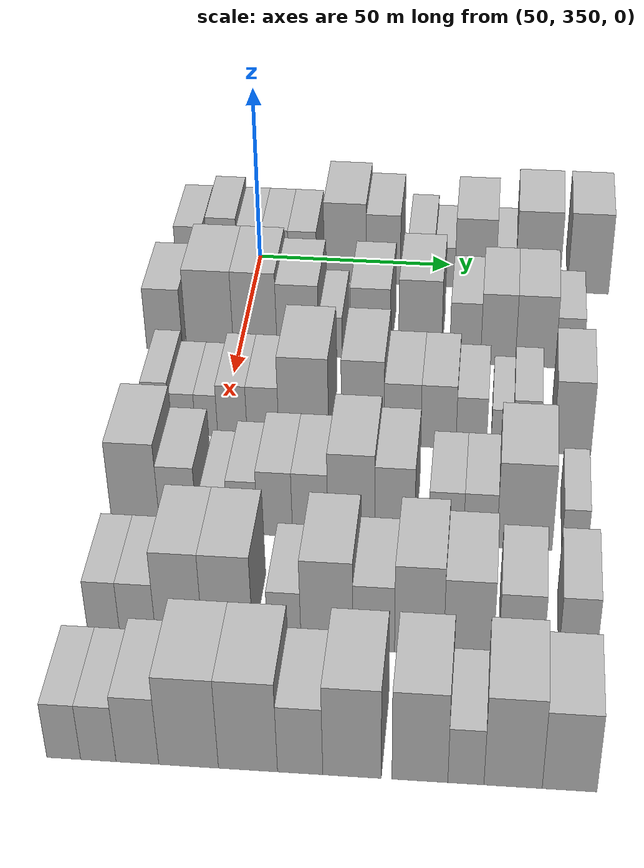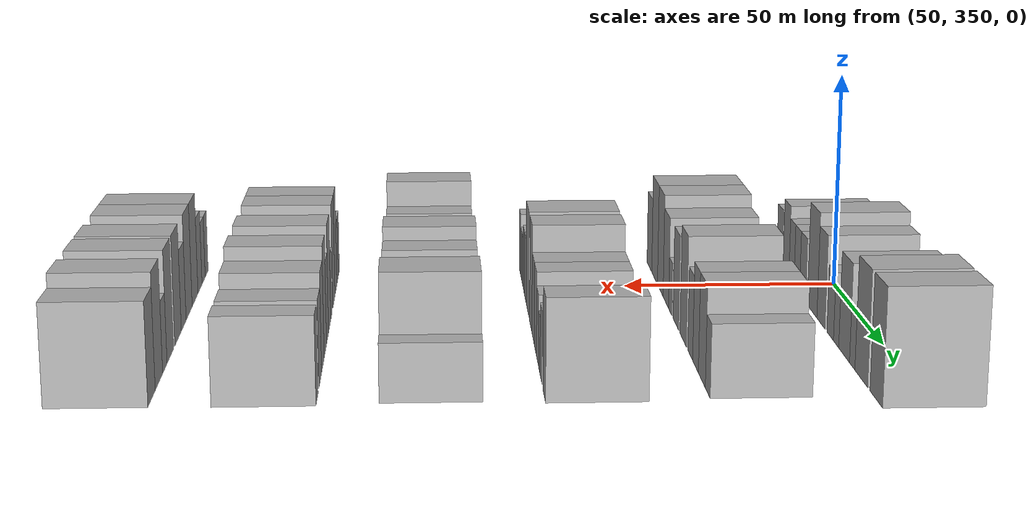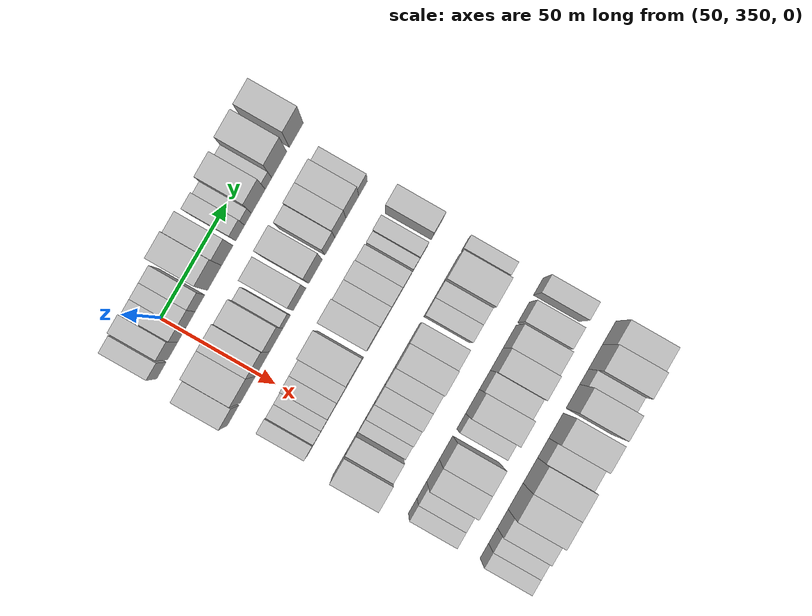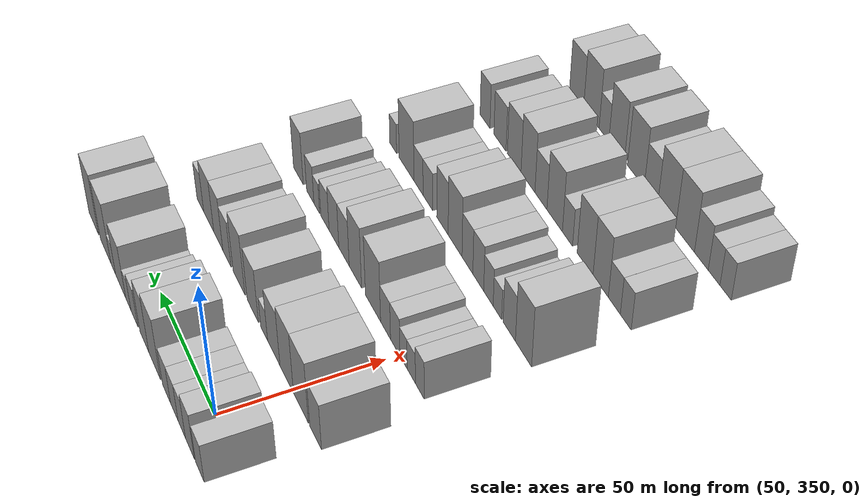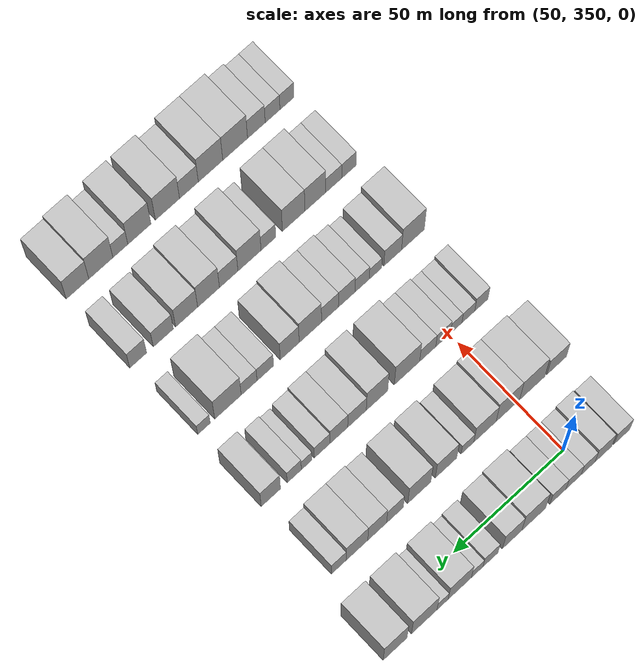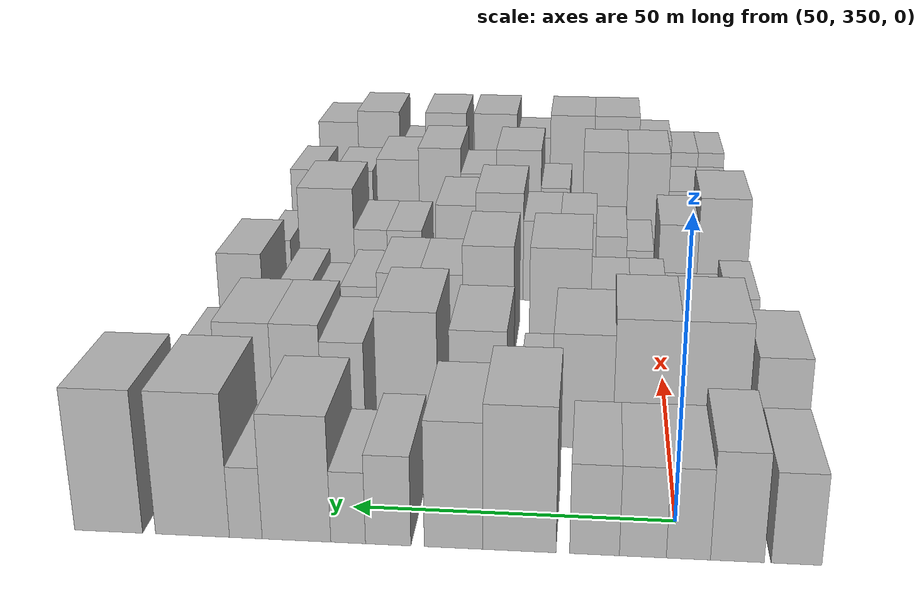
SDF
<sdf version="1.6">
 <world name="default">
  <model name="building_94">
   <static>1</static>
   <pose>50.0000 333.0118 0 0.000000 0.000000 0.000000</pose>
   <link name="link">
    <pose>0 0 7.50 0 0 0</pose>
    <collision name="collision"><geometry><box><size>20.0000 7.2620 15.0000</size></box></geometry></collision>
    <visual name="visual">
     <cast_shadows>0</cast_shadows>
     <geometry><box><size>20.0000 7.2620 15.0000</size></box></geometry>
     <material>
      <script>
       <uri>model://HANNAS_wall/materials/scripts</uri>
       <uri>model://HANNAS_wall/materials/textures</uri>
       <name>vrc/HANNAS_wall</name>
      </script>
     </material>
    </visual>
   </link>
  </model>
  <model name="building_95">
   <static>1</static>
   <pose>50.0000 341.5296 0 0.000000 0.000000 0.000000</pose>
   <link name="link">
    <pose>0 0 9.00 0 0 0</pose>
    <collision name="collision"><geometry><box><size>20.0000 7.7735 18.0000</size></box></geometry></collision>
    <visual name="visual">
     <cast_shadows>0</cast_shadows>
     <geometry><box><size>20.0000 7.7735 18.0000</size></box></geometry>
     <material>
      <script>
       <uri>model://HANNAS_wall/materials/scripts</uri>
       <uri>model://HANNAS_wall/materials/textures</uri>
       <name>vrc/HANNAS_wall</name>
      </script>
     </material>
    </visual>
   </link>
  </model>
  <model name="building_96">
   <static>1</static>
   <pose>50.0000 348.6189 0 0.000000 0.000000 0.000000</pose>
   <link name="link">
    <pose>0 0 7.50 0 0 0</pose>
    <collision name="collision"><geometry><box><size>20.0000 6.4051 15.0000</size></box></geometry></collision>
    <visual name="visual">
     <cast_shadows>0</cast_shadows>
     <geometry><box><size>20.0000 6.4051 15.0000</size></box></geometry>
     <material>
      <script>
       <uri>model://HANNAS_wall/materials/scripts</uri>
       <uri>model://HANNAS_wall/materials/textures</uri>
       <name>vrc/HANNAS_wall</name>
      </script>
     </material>
    </visual>
   </link>
  </model>
  <model name="building_97">
   <static>1</static>
   <pose>50.0000 355.2483 0 0.000000 0.000000 0.000000</pose>
   <link name="link">
    <pose>0 0 7.50 0 0 0</pose>
    <collision name="collision"><geometry><box><size>20.0000 6.8537 15.0000</size></box></geometry></collision>
    <visual name="visual">
     <cast_shadows>0</cast_shadows>
     <geometry><box><size>20.0000 6.8537 15.0000</size></box></geometry>
     <material>
      <script>
       <uri>model://HANNAS_wall/materials/scripts</uri>
       <uri>model://HANNAS_wall/materials/textures</uri>
       <name>vrc/HANNAS_wall</name>
      </script>
     </material>
    </visual>
   </link>
  </model>
  <model name="building_98">
   <static>1</static>
   <pose>50.0000 362.3265 0 0.000000 0.000000 0.000000</pose>
   <link name="link">
    <pose>0 0 7.50 0 0 0</pose>
    <collision name="collision"><geometry><box><size>20.0000 7.3027 15.0000</size></box></geometry></collision>
    <visual name="visual">
     <cast_shadows>0</cast_shadows>
     <geometry><box><size>20.0000 7.3027 15.0000</size></box></geometry>
     <material>
      <script>
       <uri>model://HANNAS_wall/materials/scripts</uri>
       <uri>model://HANNAS_wall/materials/textures</uri>
       <name>vrc/HANNAS_wall</name>
      </script>
     </material>
    </visual>
   </link>
  </model>
  <model name="building_99">
   <static>1</static>
   <pose>50.0000 373.4013 0 0.000000 0.000000 0.000000</pose>
   <link name="link">
    <pose>0 0 12.00 0 0 0</pose>
    <collision name="collision"><geometry><box><size>20.0000 10.8469 24.0000</size></box></geometry></collision>
    <visual name="visual">
     <cast_shadows>0</cast_shadows>
     <geometry><box><size>20.0000 10.8469 24.0000</size></box></geometry>
     <material>
      <script>
       <uri>model://HANNAS_wall/materials/scripts</uri>
       <uri>model://HANNAS_wall/materials/textures</uri>
       <name>vrc/HANNAS_wall</name>
      </script>
     </material>
    </visual>
   </link>
  </model>
  <model name="building_100">
   <static>1</static>
   <pose>50.0000 383.1875 0 0.000000 0.000000 0.000000</pose>
   <link name="link">
    <pose>0 0 10.50 0 0 0</pose>
    <collision name="collision"><geometry><box><size>20.0000 8.7256 21.0000</size></box></geometry></collision>
    <visual name="visual">
     <cast_shadows>0</cast_shadows>
     <geometry><box><size>20.0000 8.7256 21.0000</size></box></geometry>
     <material>
      <script>
       <uri>model://HANNAS_wall/materials/scripts</uri>
       <uri>model://HANNAS_wall/materials/textures</uri>
       <name>vrc/HANNAS_wall</name>
      </script>
     </material>
    </visual>
   </link>
  </model>
  <model name="building_101">
   <static>1</static>
   <pose>50.0000 392.9648 0 0.000000 0.000000 0.000000</pose>
   <link name="link">
    <pose>0 0 7.50 0 0 0</pose>
    <collision name="collision"><geometry><box><size>20.0000 6.8289 15.0000</size></box></geometry></collision>
    <visual name="visual">
     <cast_shadows>0</cast_shadows>
     <geometry><box><size>20.0000 6.8289 15.0000</size></box></geometry>
     <material>
      <script>
       <uri>model://HANNAS_wall/materials/scripts</uri>
       <uri>model://HANNAS_wall/materials/textures</uri>
       <name>vrc/HANNAS_wall</name>
      </script>
     </material>
    </visual>
   </link>
  </model>
  <model name="building_102">
   <static>1</static>
   <pose>50.0000 398.9967 0 0.000000 0.000000 0.000000</pose>
   <link name="link">
    <pose>0 0 6.00 0 0 0</pose>
    <collision name="collision"><geometry><box><size>20.0000 5.2349 12.0000</size></box></geometry></collision>
    <visual name="visual">
     <cast_shadows>0</cast_shadows>
     <geometry><box><size>20.0000 5.2349 12.0000</size></box></geometry>
     <material>
      <script>
       <uri>model://HANNAS_wall/materials/scripts</uri>
       <uri>model://HANNAS_wall/materials/textures</uri>
       <name>vrc/HANNAS_wall</name>
      </script>
     </material>
    </visual>
   </link>
  </model>
  <model name="building_103">
   <static>1</static>
   <pose>50.0000 406.8303 0 0.000000 0.000000 0.000000</pose>
   <link name="link">
    <pose>0 0 10.50 0 0 0</pose>
    <collision name="collision"><geometry><box><size>20.0000 10.4324 21.0000</size></box></geometry></collision>
    <visual name="visual">
     <cast_shadows>0</cast_shadows>
     <geometry><box><size>20.0000 10.4324 21.0000</size></box></geometry>
     <material>
      <script>
       <uri>model://HANNAS_wall/materials/scripts</uri>
       <uri>model://HANNAS_wall/materials/textures</uri>
       <name>vrc/HANNAS_wall</name>
      </script>
     </material>
    </visual>
   </link>
  </model>
  <model name="building_104">
   <static>1</static>
   <pose>50.0000 414.5494 0 0.000000 0.000000 0.000000</pose>
   <link name="link">
    <pose>0 0 6.00 0 0 0</pose>
    <collision name="collision"><geometry><box><size>20.0000 5.0058 12.0000</size></box></geometry></collision>
    <visual name="visual">
     <cast_shadows>0</cast_shadows>
     <geometry><box><size>20.0000 5.0058 12.0000</size></box></geometry>
     <material>
      <script>
       <uri>model://HANNAS_wall/materials/scripts</uri>
       <uri>model://HANNAS_wall/materials/textures</uri>
       <name>vrc/HANNAS_wall</name>
      </script>
     </material>
    </visual>
   </link>
  </model>
  <model name="building_105">
   <static>1</static>
   <pose>50.0000 422.7407 0 0.000000 0.000000 0.000000</pose>
   <link name="link">
    <pose>0 0 12.00 0 0 0</pose>
    <collision name="collision"><geometry><box><size>20.0000 11.3767 24.0000</size></box></geometry></collision>
    <visual name="visual">
     <cast_shadows>0</cast_shadows>
     <geometry><box><size>20.0000 11.3767 24.0000</size></box></geometry>
     <material>
      <script>
       <uri>model://HANNAS_wall/materials/scripts</uri>
       <uri>model://HANNAS_wall/materials/textures</uri>
       <name>vrc/HANNAS_wall</name>
      </script>
     </material>
    </visual>
   </link>
  </model>
  <model name="building_106">
   <static>1</static>
   <pose>50.0000 435.7053 0 0.000000 0.000000 0.000000</pose>
   <link name="link">
    <pose>0 0 12.00 0 0 0</pose>
    <collision name="collision"><geometry><box><size>20.0000 10.5524 24.0000</size></box></geometry></collision>
    <visual name="visual">
     <cast_shadows>0</cast_shadows>
     <geometry><box><size>20.0000 10.5524 24.0000</size></box></geometry>
     <material>
      <script>
       <uri>model://HANNAS_wall/materials/scripts</uri>
       <uri>model://HANNAS_wall/materials/textures</uri>
       <name>vrc/HANNAS_wall</name>
      </script>
     </material>
    </visual>
   </link>
  </model>
  <model name="building_215">
   <static>1</static>
   <pose>82.0000 331.7065 0 0.000000 0.000000 0.000000</pose>
   <link name="link">
    <pose>0 0 9.00 0 0 0</pose>
    <collision name="collision"><geometry><box><size>20.0000 8.9043 18.0000</size></box></geometry></collision>
    <visual name="visual">
     <cast_shadows>0</cast_shadows>
     <geometry><box><size>20.0000 8.9043 18.0000</size></box></geometry>
     <material>
      <script>
       <uri>model://HANNAS_wall/materials/scripts</uri>
       <uri>model://HANNAS_wall/materials/textures</uri>
       <name>vrc/HANNAS_wall</name>
      </script>
     </material>
    </visual>
   </link>
  </model>
  <model name="building_216">
   <static>1</static>
   <pose>82.0000 342.9677 0 0.000000 0.000000 0.000000</pose>
   <link name="link">
    <pose>0 0 12.00 0 0 0</pose>
    <collision name="collision"><geometry><box><size>20.0000 11.6180 24.0000</size></box></geometry></collision>
    <visual name="visual">
     <cast_shadows>0</cast_shadows>
     <geometry><box><size>20.0000 11.6180 24.0000</size></box></geometry>
     <material>
      <script>
       <uri>model://HANNAS_wall/materials/scripts</uri>
       <uri>model://HANNAS_wall/materials/textures</uri>
       <name>vrc/HANNAS_wall</name>
      </script>
     </material>
    </visual>
   </link>
  </model>
  <model name="building_217">
   <static>1</static>
   <pose>82.0000 354.1685 0 0.000000 0.000000 0.000000</pose>
   <link name="link">
    <pose>0 0 12.00 0 0 0</pose>
    <collision name="collision"><geometry><box><size>20.0000 10.7837 24.0000</size></box></geometry></collision>
    <visual name="visual">
     <cast_shadows>0</cast_shadows>
     <geometry><box><size>20.0000 10.7837 24.0000</size></box></geometry>
     <material>
      <script>
       <uri>model://HANNAS_wall/materials/scripts</uri>
       <uri>model://HANNAS_wall/materials/textures</uri>
       <name>vrc/HANNAS_wall</name>
      </script>
     </material>
    </visual>
   </link>
  </model>
  <model name="building_218">
   <static>1</static>
   <pose>82.0000 364.6769 0 0.000000 0.000000 0.000000</pose>
   <link name="link">
    <pose>0 0 10.50 0 0 0</pose>
    <collision name="collision"><geometry><box><size>20.0000 10.2331 21.0000</size></box></geometry></collision>
    <visual name="visual">
     <cast_shadows>0</cast_shadows>
     <geometry><box><size>20.0000 10.2331 21.0000</size></box></geometry>
     <material>
      <script>
       <uri>model://HANNAS_wall/materials/scripts</uri>
       <uri>model://HANNAS_wall/materials/textures</uri>
       <name>vrc/HANNAS_wall</name>
      </script>
     </material>
    </visual>
   </link>
  </model>
  <model name="building_219">
   <static>1</static>
   <pose>82.0000 372.6574 0 0.000000 0.000000 0.000000</pose>
   <link name="link">
    <pose>0 0 6.00 0 0 0</pose>
    <collision name="collision"><geometry><box><size>20.0000 5.7279 12.0000</size></box></geometry></collision>
    <visual name="visual">
     <cast_shadows>0</cast_shadows>
     <geometry><box><size>20.0000 5.7279 12.0000</size></box></geometry>
     <material>
      <script>
       <uri>model://HANNAS_wall/materials/scripts</uri>
       <uri>model://HANNAS_wall/materials/textures</uri>
       <name>vrc/HANNAS_wall</name>
      </script>
     </material>
    </visual>
   </link>
  </model>
  <model name="building_220">
   <static>1</static>
   <pose>82.0000 382.3912 0 0.000000 0.000000 0.000000</pose>
   <link name="link">
    <pose>0 0 10.50 0 0 0</pose>
    <collision name="collision"><geometry><box><size>20.0000 9.7396 21.0000</size></box></geometry></collision>
    <visual name="visual">
     <cast_shadows>0</cast_shadows>
     <geometry><box><size>20.0000 9.7396 21.0000</size></box></geometry>
     <material>
      <script>
       <uri>model://HANNAS_wall/materials/scripts</uri>
       <uri>model://HANNAS_wall/materials/textures</uri>
       <name>vrc/HANNAS_wall</name>
      </script>
     </material>
    </visual>
   </link>
  </model>
  <model name="building_221">
   <static>1</static>
   <pose>82.0000 394.4813 0 0.000000 0.000000 0.000000</pose>
   <link name="link">
    <pose>0 0 12.00 0 0 0</pose>
    <collision name="collision"><geometry><box><size>20.0000 10.4406 24.0000</size></box></geometry></collision>
    <visual name="visual">
     <cast_shadows>0</cast_shadows>
     <geometry><box><size>20.0000 10.4406 24.0000</size></box></geometry>
     <material>
      <script>
       <uri>model://HANNAS_wall/materials/scripts</uri>
       <uri>model://HANNAS_wall/materials/textures</uri>
       <name>vrc/HANNAS_wall</name>
      </script>
     </material>
    </visual>
   </link>
  </model>
  <model name="building_222">
   <static>1</static>
   <pose>82.0000 405.4523 0 0.000000 0.000000 0.000000</pose>
   <link name="link">
    <pose>0 0 9.00 0 0 0</pose>
    <collision name="collision"><geometry><box><size>20.0000 7.5016 18.0000</size></box></geometry></collision>
    <visual name="visual">
     <cast_shadows>0</cast_shadows>
     <geometry><box><size>20.0000 7.5016 18.0000</size></box></geometry>
     <material>
      <script>
       <uri>model://HANNAS_wall/materials/scripts</uri>
       <uri>model://HANNAS_wall/materials/textures</uri>
       <name>vrc/HANNAS_wall</name>
      </script>
     </material>
    </visual>
   </link>
  </model>
  <model name="building_223">
   <static>1</static>
   <pose>82.0000 413.4167 0 0.000000 0.000000 0.000000</pose>
   <link name="link">
    <pose>0 0 10.50 0 0 0</pose>
    <collision name="collision"><geometry><box><size>20.0000 8.4271 21.0000</size></box></geometry></collision>
    <visual name="visual">
     <cast_shadows>0</cast_shadows>
     <geometry><box><size>20.0000 8.4271 21.0000</size></box></geometry>
     <material>
      <script>
       <uri>model://HANNAS_wall/materials/scripts</uri>
       <uri>model://HANNAS_wall/materials/textures</uri>
       <name>vrc/HANNAS_wall</name>
      </script>
     </material>
    </visual>
   </link>
  </model>
  <model name="building_224">
   <static>1</static>
   <pose>82.0000 422.4875 0 0.000000 0.000000 0.000000</pose>
   <link name="link">
    <pose>0 0 10.50 0 0 0</pose>
    <collision name="collision"><geometry><box><size>20.0000 9.7145 21.0000</size></box></geometry></collision>
    <visual name="visual">
     <cast_shadows>0</cast_shadows>
     <geometry><box><size>20.0000 9.7145 21.0000</size></box></geometry>
     <material>
      <script>
       <uri>model://HANNAS_wall/materials/scripts</uri>
       <uri>model://HANNAS_wall/materials/textures</uri>
       <name>vrc/HANNAS_wall</name>
      </script>
     </material>
    </visual>
   </link>
  </model>
  <model name="building_225">
   <static>1</static>
   <pose>82.0000 430.6264 0 0.000000 0.000000 0.000000</pose>
   <link name="link">
    <pose>0 0 7.50 0 0 0</pose>
    <collision name="collision"><geometry><box><size>20.0000 6.5633 15.0000</size></box></geometry></collision>
    <visual name="visual">
     <cast_shadows>0</cast_shadows>
     <geometry><box><size>20.0000 6.5633 15.0000</size></box></geometry>
     <material>
      <script>
       <uri>model://HANNAS_wall/materials/scripts</uri>
       <uri>model://HANNAS_wall/materials/textures</uri>
       <name>vrc/HANNAS_wall</name>
      </script>
     </material>
    </visual>
   </link>
  </model>
  <model name="building_330">
   <static>1</static>
   <pose>114.0000 335.5327 0 0.000000 0.000000 0.000000</pose>
   <link name="link">
    <pose>0 0 7.50 0 0 0</pose>
    <collision name="collision"><geometry><box><size>20.0000 6.1132 15.0000</size></box></geometry></collision>
    <visual name="visual">
     <cast_shadows>0</cast_shadows>
     <geometry><box><size>20.0000 6.1132 15.0000</size></box></geometry>
     <material>
      <script>
       <uri>model://HANNAS_wall/materials/scripts</uri>
       <uri>model://HANNAS_wall/materials/textures</uri>
       <name>vrc/HANNAS_wall</name>
      </script>
     </material>
    </visual>
   </link>
  </model>
  <model name="building_331">
   <static>1</static>
   <pose>114.0000 341.5379 0 0.000000 0.000000 0.000000</pose>
   <link name="link">
    <pose>0 0 6.00 0 0 0</pose>
    <collision name="collision"><geometry><box><size>20.0000 5.8972 12.0000</size></box></geometry></collision>
    <visual name="visual">
     <cast_shadows>0</cast_shadows>
     <geometry><box><size>20.0000 5.8972 12.0000</size></box></geometry>
     <material>
      <script>
       <uri>model://HANNAS_wall/materials/scripts</uri>
       <uri>model://HANNAS_wall/materials/textures</uri>
       <name>vrc/HANNAS_wall</name>
      </script>
     </material>
    </visual>
   </link>
  </model>
  <model name="building_332">
   <static>1</static>
   <pose>114.0000 347.0596 0 0.000000 0.000000 0.000000</pose>
   <link name="link">
    <pose>0 0 6.00 0 0 0</pose>
    <collision name="collision"><geometry><box><size>20.0000 5.1463 12.0000</size></box></geometry></collision>
    <visual name="visual">
     <cast_shadows>0</cast_shadows>
     <geometry><box><size>20.0000 5.1463 12.0000</size></box></geometry>
     <material>
      <script>
       <uri>model://HANNAS_wall/materials/scripts</uri>
       <uri>model://HANNAS_wall/materials/textures</uri>
       <name>vrc/HANNAS_wall</name>
      </script>
     </material>
    </visual>
   </link>
  </model>
  <model name="building_333">
   <static>1</static>
   <pose>114.0000 353.0600 0 0.000000 0.000000 0.000000</pose>
   <link name="link">
    <pose>0 0 7.50 0 0 0</pose>
    <collision name="collision"><geometry><box><size>20.0000 6.8545 15.0000</size></box></geometry></collision>
    <visual name="visual">
     <cast_shadows>0</cast_shadows>
     <geometry><box><size>20.0000 6.8545 15.0000</size></box></geometry>
     <material>
      <script>
       <uri>model://HANNAS_wall/materials/scripts</uri>
       <uri>model://HANNAS_wall/materials/textures</uri>
       <name>vrc/HANNAS_wall</name>
      </script>
     </material>
    </visual>
   </link>
  </model>
  <model name="building_334">
   <static>1</static>
   <pose>114.0000 360.1743 0 0.000000 0.000000 0.000000</pose>
   <link name="link">
    <pose>0 0 7.50 0 0 0</pose>
    <collision name="collision"><geometry><box><size>20.0000 7.3742 15.0000</size></box></geometry></collision>
    <visual name="visual">
     <cast_shadows>0</cast_shadows>
     <geometry><box><size>20.0000 7.3742 15.0000</size></box></geometry>
     <material>
      <script>
       <uri>model://HANNAS_wall/materials/scripts</uri>
       <uri>model://HANNAS_wall/materials/textures</uri>
       <name>vrc/HANNAS_wall</name>
      </script>
     </material>
    </visual>
   </link>
  </model>
  <model name="building_335">
   <static>1</static>
   <pose>114.0000 369.6341 0 0.000000 0.000000 0.000000</pose>
   <link name="link">
    <pose>0 0 12.00 0 0 0</pose>
    <collision name="collision"><geometry><box><size>20.0000 11.5454 24.0000</size></box></geometry></collision>
    <visual name="visual">
     <cast_shadows>0</cast_shadows>
     <geometry><box><size>20.0000 11.5454 24.0000</size></box></geometry>
     <material>
      <script>
       <uri>model://HANNAS_wall/materials/scripts</uri>
       <uri>model://HANNAS_wall/materials/textures</uri>
       <name>vrc/HANNAS_wall</name>
      </script>
     </material>
    </visual>
   </link>
  </model>
  <model name="building_336">
   <static>1</static>
   <pose>114.0000 383.2844 0 0.000000 0.000000 0.000000</pose>
   <link name="link">
    <pose>0 0 12.00 0 0 0</pose>
    <collision name="collision"><geometry><box><size>20.0000 9.7552 24.0000</size></box></geometry></collision>
    <visual name="visual">
     <cast_shadows>0</cast_shadows>
     <geometry><box><size>20.0000 9.7552 24.0000</size></box></geometry>
     <material>
      <script>
       <uri>model://HANNAS_wall/materials/scripts</uri>
       <uri>model://HANNAS_wall/materials/textures</uri>
       <name>vrc/HANNAS_wall</name>
      </script>
     </material>
    </visual>
   </link>
  </model>
  <model name="building_337">
   <static>1</static>
   <pose>114.0000 392.3564 0 0.000000 0.000000 0.000000</pose>
   <link name="link">
    <pose>0 0 9.00 0 0 0</pose>
    <collision name="collision"><geometry><box><size>20.0000 8.3886 18.0000</size></box></geometry></collision>
    <visual name="visual">
     <cast_shadows>0</cast_shadows>
     <geometry><box><size>20.0000 8.3886 18.0000</size></box></geometry>
     <material>
      <script>
       <uri>model://HANNAS_wall/materials/scripts</uri>
       <uri>model://HANNAS_wall/materials/textures</uri>
       <name>vrc/HANNAS_wall</name>
      </script>
     </material>
    </visual>
   </link>
  </model>
  <model name="building_338">
   <static>1</static>
   <pose>114.0000 400.5766 0 0.000000 0.000000 0.000000</pose>
   <link name="link">
    <pose>0 0 9.00 0 0 0</pose>
    <collision name="collision"><geometry><box><size>20.0000 8.0518 18.0000</size></box></geometry></collision>
    <visual name="visual">
     <cast_shadows>0</cast_shadows>
     <geometry><box><size>20.0000 8.0518 18.0000</size></box></geometry>
     <material>
      <script>
       <uri>model://HANNAS_wall/materials/scripts</uri>
       <uri>model://HANNAS_wall/materials/textures</uri>
       <name>vrc/HANNAS_wall</name>
      </script>
     </material>
    </visual>
   </link>
  </model>
  <model name="building_339">
   <static>1</static>
   <pose>114.0000 408.0944 0 0.000000 0.000000 0.000000</pose>
   <link name="link">
    <pose>0 0 7.50 0 0 0</pose>
    <collision name="collision"><geometry><box><size>20.0000 6.9838 15.0000</size></box></geometry></collision>
    <visual name="visual">
     <cast_shadows>0</cast_shadows>
     <geometry><box><size>20.0000 6.9838 15.0000</size></box></geometry>
     <material>
      <script>
       <uri>model://HANNAS_wall/materials/scripts</uri>
       <uri>model://HANNAS_wall/materials/textures</uri>
       <name>vrc/HANNAS_wall</name>
      </script>
     </material>
    </visual>
   </link>
  </model>
  <model name="building_340">
   <static>1</static>
   <pose>114.0000 415.0109 0 0.000000 0.000000 0.000000</pose>
   <link name="link">
    <pose>0 0 6.00 0 0 0</pose>
    <collision name="collision"><geometry><box><size>20.0000 4.8493 12.0000</size></box></geometry></collision>
    <visual name="visual">
     <cast_shadows>0</cast_shadows>
     <geometry><box><size>20.0000 4.8493 12.0000</size></box></geometry>
     <material>
      <script>
       <uri>model://HANNAS_wall/materials/scripts</uri>
       <uri>model://HANNAS_wall/materials/textures</uri>
       <name>vrc/HANNAS_wall</name>
      </script>
     </material>
    </visual>
   </link>
  </model>
  <model name="building_341">
   <static>1</static>
   <pose>114.0000 420.5894 0 0.000000 0.000000 0.000000</pose>
   <link name="link">
    <pose>0 0 7.50 0 0 0</pose>
    <collision name="collision"><geometry><box><size>20.0000 6.3077 15.0000</size></box></geometry></collision>
    <visual name="visual">
     <cast_shadows>0</cast_shadows>
     <geometry><box><size>20.0000 6.3077 15.0000</size></box></geometry>
     <material>
      <script>
       <uri>model://HANNAS_wall/materials/scripts</uri>
       <uri>model://HANNAS_wall/materials/textures</uri>
       <name>vrc/HANNAS_wall</name>
      </script>
     </material>
    </visual>
   </link>
  </model>
  <model name="building_342">
   <static>1</static>
   <pose>114.0000 431.0531 0 0.000000 0.000000 0.000000</pose>
   <link name="link">
    <pose>0 0 10.50 0 0 0</pose>
    <collision name="collision"><geometry><box><size>20.0000 8.6198 21.0000</size></box></geometry></collision>
    <visual name="visual">
     <cast_shadows>0</cast_shadows>
     <geometry><box><size>20.0000 8.6198 21.0000</size></box></geometry>
     <material>
      <script>
       <uri>model://HANNAS_wall/materials/scripts</uri>
       <uri>model://HANNAS_wall/materials/textures</uri>
       <name>vrc/HANNAS_wall</name>
      </script>
     </material>
    </visual>
   </link>
  </model>
  <model name="building_450">
   <static>1</static>
   <pose>146.0000 336.5098 0 0.000000 0.000000 0.000000</pose>
   <link name="link">
    <pose>0 0 12.00 0 0 0</pose>
    <collision name="collision"><geometry><box><size>20.0000 10.4831 24.0000</size></box></geometry></collision>
    <visual name="visual">
     <cast_shadows>0</cast_shadows>
     <geometry><box><size>20.0000 10.4831 24.0000</size></box></geometry>
     <material>
      <script>
       <uri>model://HANNAS_wall/materials/scripts</uri>
       <uri>model://HANNAS_wall/materials/textures</uri>
       <name>vrc/HANNAS_wall</name>
      </script>
     </material>
    </visual>
   </link>
  </model>
  <model name="building_451">
   <static>1</static>
   <pose>146.0000 345.8288 0 0.000000 0.000000 0.000000</pose>
   <link name="link">
    <pose>0 0 9.00 0 0 0</pose>
    <collision name="collision"><geometry><box><size>20.0000 8.1549 18.0000</size></box></geometry></collision>
    <visual name="visual">
     <cast_shadows>0</cast_shadows>
     <geometry><box><size>20.0000 8.1549 18.0000</size></box></geometry>
     <material>
      <script>
       <uri>model://HANNAS_wall/materials/scripts</uri>
       <uri>model://HANNAS_wall/materials/textures</uri>
       <name>vrc/HANNAS_wall</name>
      </script>
     </material>
    </visual>
   </link>
  </model>
  <model name="building_452">
   <static>1</static>
   <pose>146.0000 353.7565 0 0.000000 0.000000 0.000000</pose>
   <link name="link">
    <pose>0 0 6.00 0 0 0</pose>
    <collision name="collision"><geometry><box><size>20.0000 5.7004 12.0000</size></box></geometry></collision>
    <visual name="visual">
     <cast_shadows>0</cast_shadows>
     <geometry><box><size>20.0000 5.7004 12.0000</size></box></geometry>
     <material>
      <script>
       <uri>model://HANNAS_wall/materials/scripts</uri>
       <uri>model://HANNAS_wall/materials/textures</uri>
       <name>vrc/HANNAS_wall</name>
      </script>
     </material>
    </visual>
   </link>
  </model>
  <model name="building_453">
   <static>1</static>
   <pose>146.0000 359.8624 0 0.000000 0.000000 0.000000</pose>
   <link name="link">
    <pose>0 0 7.50 0 0 0</pose>
    <collision name="collision"><geometry><box><size>20.0000 6.5115 15.0000</size></box></geometry></collision>
    <visual name="visual">
     <cast_shadows>0</cast_shadows>
     <geometry><box><size>20.0000 6.5115 15.0000</size></box></geometry>
     <material>
      <script>
       <uri>model://HANNAS_wall/materials/scripts</uri>
       <uri>model://HANNAS_wall/materials/textures</uri>
       <name>vrc/HANNAS_wall</name>
      </script>
     </material>
    </visual>
   </link>
  </model>
  <model name="building_454">
   <static>1</static>
   <pose>146.0000 366.9100 0 0.000000 0.000000 0.000000</pose>
   <link name="link">
    <pose>0 0 9.00 0 0 0</pose>
    <collision name="collision"><geometry><box><size>20.0000 7.5836 18.0000</size></box></geometry></collision>
    <visual name="visual">
     <cast_shadows>0</cast_shadows>
     <geometry><box><size>20.0000 7.5836 18.0000</size></box></geometry>
     <material>
      <script>
       <uri>model://HANNAS_wall/materials/scripts</uri>
       <uri>model://HANNAS_wall/materials/textures</uri>
       <name>vrc/HANNAS_wall</name>
      </script>
     </material>
    </visual>
   </link>
  </model>
  <model name="building_455">
   <static>1</static>
   <pose>146.0000 374.5568 0 0.000000 0.000000 0.000000</pose>
   <link name="link">
    <pose>0 0 9.00 0 0 0</pose>
    <collision name="collision"><geometry><box><size>20.0000 7.7101 18.0000</size></box></geometry></collision>
    <visual name="visual">
     <cast_shadows>0</cast_shadows>
     <geometry><box><size>20.0000 7.7101 18.0000</size></box></geometry>
     <material>
      <script>
       <uri>model://HANNAS_wall/materials/scripts</uri>
       <uri>model://HANNAS_wall/materials/textures</uri>
       <name>vrc/HANNAS_wall</name>
      </script>
     </material>
    </visual>
   </link>
  </model>
  <model name="building_456">
   <static>1</static>
   <pose>146.0000 383.4789 0 0.000000 0.000000 0.000000</pose>
   <link name="link">
    <pose>0 0 12.00 0 0 0</pose>
    <collision name="collision"><geometry><box><size>20.0000 10.1341 24.0000</size></box></geometry></collision>
    <visual name="visual">
     <cast_shadows>0</cast_shadows>
     <geometry><box><size>20.0000 10.1341 24.0000</size></box></geometry>
     <material>
      <script>
       <uri>model://HANNAS_wall/materials/scripts</uri>
       <uri>model://HANNAS_wall/materials/textures</uri>
       <name>vrc/HANNAS_wall</name>
      </script>
     </material>
    </visual>
   </link>
  </model>
  <model name="building_457">
   <static>1</static>
   <pose>146.0000 392.8158 0 0.000000 0.000000 0.000000</pose>
   <link name="link">
    <pose>0 0 10.50 0 0 0</pose>
    <collision name="collision"><geometry><box><size>20.0000 8.5396 21.0000</size></box></geometry></collision>
    <visual name="visual">
     <cast_shadows>0</cast_shadows>
     <geometry><box><size>20.0000 8.5396 21.0000</size></box></geometry>
     <material>
      <script>
       <uri>model://HANNAS_wall/materials/scripts</uri>
       <uri>model://HANNAS_wall/materials/textures</uri>
       <name>vrc/HANNAS_wall</name>
      </script>
     </material>
    </visual>
   </link>
  </model>
  <model name="building_458">
   <static>1</static>
   <pose>146.0000 403.8211 0 0.000000 0.000000 0.000000</pose>
   <link name="link">
    <pose>0 0 7.50 0 0 0</pose>
    <collision name="collision"><geometry><box><size>20.0000 7.4711 15.0000</size></box></geometry></collision>
    <visual name="visual">
     <cast_shadows>0</cast_shadows>
     <geometry><box><size>20.0000 7.4711 15.0000</size></box></geometry>
     <material>
      <script>
       <uri>model://HANNAS_wall/materials/scripts</uri>
       <uri>model://HANNAS_wall/materials/textures</uri>
       <name>vrc/HANNAS_wall</name>
      </script>
     </material>
    </visual>
   </link>
  </model>
  <model name="building_459">
   <static>1</static>
   <pose>146.0000 411.1218 0 0.000000 0.000000 0.000000</pose>
   <link name="link">
    <pose>0 0 7.50 0 0 0</pose>
    <collision name="collision"><geometry><box><size>20.0000 7.1302 15.0000</size></box></geometry></collision>
    <visual name="visual">
     <cast_shadows>0</cast_shadows>
     <geometry><box><size>20.0000 7.1302 15.0000</size></box></geometry>
     <material>
      <script>
       <uri>model://HANNAS_wall/materials/scripts</uri>
       <uri>model://HANNAS_wall/materials/textures</uri>
       <name>vrc/HANNAS_wall</name>
      </script>
     </material>
    </visual>
   </link>
  </model>
  <model name="building_460">
   <static>1</static>
   <pose>146.0000 420.6206 0 0.000000 0.000000 0.000000</pose>
   <link name="link">
    <pose>0 0 12.00 0 0 0</pose>
    <collision name="collision"><geometry><box><size>20.0000 11.8675 24.0000</size></box></geometry></collision>
    <visual name="visual">
     <cast_shadows>0</cast_shadows>
     <geometry><box><size>20.0000 11.8675 24.0000</size></box></geometry>
     <material>
      <script>
       <uri>model://HANNAS_wall/materials/scripts</uri>
       <uri>model://HANNAS_wall/materials/textures</uri>
       <name>vrc/HANNAS_wall</name>
      </script>
     </material>
    </visual>
   </link>
  </model>
  <model name="building_461">
   <static>1</static>
   <pose>146.0000 431.3538 0 0.000000 0.000000 0.000000</pose>
   <link name="link">
    <pose>0 0 6.00 0 0 0</pose>
    <collision name="collision"><geometry><box><size>20.0000 5.5989 12.0000</size></box></geometry></collision>
    <visual name="visual">
     <cast_shadows>0</cast_shadows>
     <geometry><box><size>20.0000 5.5989 12.0000</size></box></geometry>
     <material>
      <script>
       <uri>model://HANNAS_wall/materials/scripts</uri>
       <uri>model://HANNAS_wall/materials/textures</uri>
       <name>vrc/HANNAS_wall</name>
      </script>
     </material>
    </visual>
   </link>
  </model>
  <model name="building_565">
   <static>1</static>
   <pose>178.0000 335.8365 0 0.000000 0.000000 0.000000</pose>
   <link name="link">
    <pose>0 0 7.50 0 0 0</pose>
    <collision name="collision"><geometry><box><size>20.0000 6.5862 15.0000</size></box></geometry></collision>
    <visual name="visual">
     <cast_shadows>0</cast_shadows>
     <geometry><box><size>20.0000 6.5862 15.0000</size></box></geometry>
     <material>
      <script>
       <uri>model://HANNAS_wall/materials/scripts</uri>
       <uri>model://HANNAS_wall/materials/textures</uri>
       <name>vrc/HANNAS_wall</name>
      </script>
     </material>
    </visual>
   </link>
  </model>
  <model name="building_566">
   <static>1</static>
   <pose>178.0000 342.8164 0 0.000000 0.000000 0.000000</pose>
   <link name="link">
    <pose>0 0 7.50 0 0 0</pose>
    <collision name="collision"><geometry><box><size>20.0000 7.3734 15.0000</size></box></geometry></collision>
    <visual name="visual">
     <cast_shadows>0</cast_shadows>
     <geometry><box><size>20.0000 7.3734 15.0000</size></box></geometry>
     <material>
      <script>
       <uri>model://HANNAS_wall/materials/scripts</uri>
       <uri>model://HANNAS_wall/materials/textures</uri>
       <name>vrc/HANNAS_wall</name>
      </script>
     </material>
    </visual>
   </link>
  </model>
  <model name="building_567">
   <static>1</static>
   <pose>178.0000 351.3065 0 0.000000 0.000000 0.000000</pose>
   <link name="link">
    <pose>0 0 12.00 0 0 0</pose>
    <collision name="collision"><geometry><box><size>20.0000 9.6069 24.0000</size></box></geometry></collision>
    <visual name="visual">
     <cast_shadows>0</cast_shadows>
     <geometry><box><size>20.0000 9.6069 24.0000</size></box></geometry>
     <material>
      <script>
       <uri>model://HANNAS_wall/materials/scripts</uri>
       <uri>model://HANNAS_wall/materials/textures</uri>
       <name>vrc/HANNAS_wall</name>
      </script>
     </material>
    </visual>
   </link>
  </model>
  <model name="building_568">
   <static>1</static>
   <pose>178.0000 361.2381 0 0.000000 0.000000 0.000000</pose>
   <link name="link">
    <pose>0 0 12.00 0 0 0</pose>
    <collision name="collision"><geometry><box><size>20.0000 10.2563 24.0000</size></box></geometry></collision>
    <visual name="visual">
     <cast_shadows>0</cast_shadows>
     <geometry><box><size>20.0000 10.2563 24.0000</size></box></geometry>
     <material>
      <script>
       <uri>model://HANNAS_wall/materials/scripts</uri>
       <uri>model://HANNAS_wall/materials/textures</uri>
       <name>vrc/HANNAS_wall</name>
      </script>
     </material>
    </visual>
   </link>
  </model>
  <model name="building_569">
   <static>1</static>
   <pose>178.0000 372.7438 0 0.000000 0.000000 0.000000</pose>
   <link name="link">
    <pose>0 0 7.50 0 0 0</pose>
    <collision name="collision"><geometry><box><size>20.0000 6.7551 15.0000</size></box></geometry></collision>
    <visual name="visual">
     <cast_shadows>0</cast_shadows>
     <geometry><box><size>20.0000 6.7551 15.0000</size></box></geometry>
     <material>
      <script>
       <uri>model://HANNAS_wall/materials/scripts</uri>
       <uri>model://HANNAS_wall/materials/textures</uri>
       <name>vrc/HANNAS_wall</name>
      </script>
     </material>
    </visual>
   </link>
  </model>
  <model name="building_570">
   <static>1</static>
   <pose>178.0000 381.3680 0 0.000000 0.000000 0.000000</pose>
   <link name="link">
    <pose>0 0 12.00 0 0 0</pose>
    <collision name="collision"><geometry><box><size>20.0000 10.4934 24.0000</size></box></geometry></collision>
    <visual name="visual">
     <cast_shadows>0</cast_shadows>
     <geometry><box><size>20.0000 10.4934 24.0000</size></box></geometry>
     <material>
      <script>
       <uri>model://HANNAS_wall/materials/scripts</uri>
       <uri>model://HANNAS_wall/materials/textures</uri>
       <name>vrc/HANNAS_wall</name>
      </script>
     </material>
    </visual>
   </link>
  </model>
  <model name="building_571">
   <static>1</static>
   <pose>178.0000 390.7957 0 0.000000 0.000000 0.000000</pose>
   <link name="link">
    <pose>0 0 9.00 0 0 0</pose>
    <collision name="collision"><geometry><box><size>20.0000 8.3620 18.0000</size></box></geometry></collision>
    <visual name="visual">
     <cast_shadows>0</cast_shadows>
     <geometry><box><size>20.0000 8.3620 18.0000</size></box></geometry>
     <material>
      <script>
       <uri>model://HANNAS_wall/materials/scripts</uri>
       <uri>model://HANNAS_wall/materials/textures</uri>
       <name>vrc/HANNAS_wall</name>
      </script>
     </material>
    </visual>
   </link>
  </model>
  <model name="building_572">
   <static>1</static>
   <pose>178.0000 399.9123 0 0.000000 0.000000 0.000000</pose>
   <link name="link">
    <pose>0 0 12.00 0 0 0</pose>
    <collision name="collision"><geometry><box><size>20.0000 9.8712 24.0000</size></box></geometry></collision>
    <visual name="visual">
     <cast_shadows>0</cast_shadows>
     <geometry><box><size>20.0000 9.8712 24.0000</size></box></geometry>
     <material>
      <script>
       <uri>model://HANNAS_wall/materials/scripts</uri>
       <uri>model://HANNAS_wall/materials/textures</uri>
       <name>vrc/HANNAS_wall</name>
      </script>
     </material>
    </visual>
   </link>
  </model>
  <model name="building_573">
   <static>1</static>
   <pose>178.0000 409.8149 0 0.000000 0.000000 0.000000</pose>
   <link name="link">
    <pose>0 0 10.50 0 0 0</pose>
    <collision name="collision"><geometry><box><size>20.0000 9.9340 21.0000</size></box></geometry></collision>
    <visual name="visual">
     <cast_shadows>0</cast_shadows>
     <geometry><box><size>20.0000 9.9340 21.0000</size></box></geometry>
     <material>
      <script>
       <uri>model://HANNAS_wall/materials/scripts</uri>
       <uri>model://HANNAS_wall/materials/textures</uri>
       <name>vrc/HANNAS_wall</name>
      </script>
     </material>
    </visual>
   </link>
  </model>
  <model name="building_574">
   <static>1</static>
   <pose>178.0000 420.2806 0 0.000000 0.000000 0.000000</pose>
   <link name="link">
    <pose>0 0 9.00 0 0 0</pose>
    <collision name="collision"><geometry><box><size>20.0000 8.9974 18.0000</size></box></geometry></collision>
    <visual name="visual">
     <cast_shadows>0</cast_shadows>
     <geometry><box><size>20.0000 8.9974 18.0000</size></box></geometry>
     <material>
      <script>
       <uri>model://HANNAS_wall/materials/scripts</uri>
       <uri>model://HANNAS_wall/materials/textures</uri>
       <name>vrc/HANNAS_wall</name>
      </script>
     </material>
    </visual>
   </link>
  </model>
  <model name="building_575">
   <static>1</static>
   <pose>178.0000 431.5474 0 0.000000 0.000000 0.000000</pose>
   <link name="link">
    <pose>0 0 9.00 0 0 0</pose>
    <collision name="collision"><geometry><box><size>20.0000 7.5361 18.0000</size></box></geometry></collision>
    <visual name="visual">
     <cast_shadows>0</cast_shadows>
     <geometry><box><size>20.0000 7.5361 18.0000</size></box></geometry>
     <material>
      <script>
       <uri>model://HANNAS_wall/materials/scripts</uri>
       <uri>model://HANNAS_wall/materials/textures</uri>
       <name>vrc/HANNAS_wall</name>
      </script>
     </material>
    </visual>
   </link>
  </model>
  <model name="building_688">
   <static>1</static>
   <pose>210.0000 334.5135 0 0.000000 0.000000 0.000000</pose>
   <link name="link">
    <pose>0 0 7.50 0 0 0</pose>
    <collision name="collision"><geometry><box><size>20.0000 6.4831 15.0000</size></box></geometry></collision>
    <visual name="visual">
     <cast_shadows>0</cast_shadows>
     <geometry><box><size>20.0000 6.4831 15.0000</size></box></geometry>
     <material>
      <script>
       <uri>model://HANNAS_wall/materials/scripts</uri>
       <uri>model://HANNAS_wall/materials/textures</uri>
       <name>vrc/HANNAS_wall</name>
      </script>
     </material>
    </visual>
   </link>
  </model>
  <model name="building_689">
   <static>1</static>
   <pose>210.0000 341.1479 0 0.000000 0.000000 0.000000</pose>
   <link name="link">
    <pose>0 0 7.50 0 0 0</pose>
    <collision name="collision"><geometry><box><size>20.0000 6.7857 15.0000</size></box></geometry></collision>
    <visual name="visual">
     <cast_shadows>0</cast_shadows>
     <geometry><box><size>20.0000 6.7857 15.0000</size></box></geometry>
     <material>
      <script>
       <uri>model://HANNAS_wall/materials/scripts</uri>
       <uri>model://HANNAS_wall/materials/textures</uri>
       <name>vrc/HANNAS_wall</name>
      </script>
     </material>
    </visual>
   </link>
  </model>
  <model name="building_690">
   <static>1</static>
   <pose>210.0000 348.6078 0 0.000000 0.000000 0.000000</pose>
   <link name="link">
    <pose>0 0 9.00 0 0 0</pose>
    <collision name="collision"><geometry><box><size>20.0000 8.1340 18.0000</size></box></geometry></collision>
    <visual name="visual">
     <cast_shadows>0</cast_shadows>
     <geometry><box><size>20.0000 8.1340 18.0000</size></box></geometry>
     <material>
      <script>
       <uri>model://HANNAS_wall/materials/scripts</uri>
       <uri>model://HANNAS_wall/materials/textures</uri>
       <name>vrc/HANNAS_wall</name>
      </script>
     </material>
    </visual>
   </link>
  </model>
  <model name="building_691">
   <static>1</static>
   <pose>210.0000 358.3513 0 0.000000 0.000000 0.000000</pose>
   <link name="link">
    <pose>0 0 12.00 0 0 0</pose>
    <collision name="collision"><geometry><box><size>20.0000 11.3530 24.0000</size></box></geometry></collision>
    <visual name="visual">
     <cast_shadows>0</cast_shadows>
     <geometry><box><size>20.0000 11.3530 24.0000</size></box></geometry>
     <material>
      <script>
       <uri>model://HANNAS_wall/materials/scripts</uri>
       <uri>model://HANNAS_wall/materials/textures</uri>
       <name>vrc/HANNAS_wall</name>
      </script>
     </material>
    </visual>
   </link>
  </model>
  <model name="building_692">
   <static>1</static>
   <pose>210.0000 369.6158 0 0.000000 0.000000 0.000000</pose>
   <link name="link">
    <pose>0 0 12.00 0 0 0</pose>
    <collision name="collision"><geometry><box><size>20.0000 11.1760 24.0000</size></box></geometry></collision>
    <visual name="visual">
     <cast_shadows>0</cast_shadows>
     <geometry><box><size>20.0000 11.1760 24.0000</size></box></geometry>
     <material>
      <script>
       <uri>model://HANNAS_wall/materials/scripts</uri>
       <uri>model://HANNAS_wall/materials/textures</uri>
       <name>vrc/HANNAS_wall</name>
      </script>
     </material>
    </visual>
   </link>
  </model>
  <model name="building_693">
   <static>1</static>
   <pose>210.0000 379.4776 0 0.000000 0.000000 0.000000</pose>
   <link name="link">
    <pose>0 0 9.00 0 0 0</pose>
    <collision name="collision"><geometry><box><size>20.0000 8.5476 18.0000</size></box></geometry></collision>
    <visual name="visual">
     <cast_shadows>0</cast_shadows>
     <geometry><box><size>20.0000 8.5476 18.0000</size></box></geometry>
     <material>
      <script>
       <uri>model://HANNAS_wall/materials/scripts</uri>
       <uri>model://HANNAS_wall/materials/textures</uri>
       <name>vrc/HANNAS_wall</name>
      </script>
     </material>
    </visual>
   </link>
  </model>
  <model name="building_694">
   <static>1</static>
   <pose>210.0000 389.2386 0 0.000000 0.000000 0.000000</pose>
   <link name="link">
    <pose>0 0 12.00 0 0 0</pose>
    <collision name="collision"><geometry><box><size>20.0000 10.9745 24.0000</size></box></geometry></collision>
    <visual name="visual">
     <cast_shadows>0</cast_shadows>
     <geometry><box><size>20.0000 10.9745 24.0000</size></box></geometry>
     <material>
      <script>
       <uri>model://HANNAS_wall/materials/scripts</uri>
       <uri>model://HANNAS_wall/materials/textures</uri>
       <name>vrc/HANNAS_wall</name>
      </script>
     </material>
    </visual>
   </link>
  </model>
  <model name="building_695">
   <static>1</static>
   <pose>210.0000 401.9530 0 0.000000 0.000000 0.000000</pose>
   <link name="link">
    <pose>0 0 12.00 0 0 0</pose>
    <collision name="collision"><geometry><box><size>20.0000 10.4544 24.0000</size></box></geometry></collision>
    <visual name="visual">
     <cast_shadows>0</cast_shadows>
     <geometry><box><size>20.0000 10.4544 24.0000</size></box></geometry>
     <material>
      <script>
       <uri>model://HANNAS_wall/materials/scripts</uri>
       <uri>model://HANNAS_wall/materials/textures</uri>
       <name>vrc/HANNAS_wall</name>
      </script>
     </material>
    </visual>
   </link>
  </model>
  <model name="building_696">
   <static>1</static>
   <pose>210.0000 410.5436 0 0.000000 0.000000 0.000000</pose>
   <link name="link">
    <pose>0 0 7.50 0 0 0</pose>
    <collision name="collision"><geometry><box><size>20.0000 6.7268 15.0000</size></box></geometry></collision>
    <visual name="visual">
     <cast_shadows>0</cast_shadows>
     <geometry><box><size>20.0000 6.7268 15.0000</size></box></geometry>
     <material>
      <script>
       <uri>model://HANNAS_wall/materials/scripts</uri>
       <uri>model://HANNAS_wall/materials/textures</uri>
       <name>vrc/HANNAS_wall</name>
      </script>
     </material>
    </visual>
   </link>
  </model>
  <model name="building_697">
   <static>1</static>
   <pose>210.0000 419.3183 0 0.000000 0.000000 0.000000</pose>
   <link name="link">
    <pose>0 0 12.00 0 0 0</pose>
    <collision name="collision"><geometry><box><size>20.0000 10.8227 24.0000</size></box></geometry></collision>
    <visual name="visual">
     <cast_shadows>0</cast_shadows>
     <geometry><box><size>20.0000 10.8227 24.0000</size></box></geometry>
     <material>
      <script>
       <uri>model://HANNAS_wall/materials/scripts</uri>
       <uri>model://HANNAS_wall/materials/textures</uri>
       <name>vrc/HANNAS_wall</name>
      </script>
     </material>
    </visual>
   </link>
  </model>
  <model name="building_698">
   <static>1</static>
   <pose>210.0000 429.7992 0 0.000000 0.000000 0.000000</pose>
   <link name="link">
    <pose>0 0 10.50 0 0 0</pose>
    <collision name="collision"><geometry><box><size>20.0000 10.1390 21.0000</size></box></geometry></collision>
    <visual name="visual">
     <cast_shadows>0</cast_shadows>
     <geometry><box><size>20.0000 10.1390 21.0000</size></box></geometry>
     <material>
      <script>
       <uri>model://HANNAS_wall/materials/scripts</uri>
       <uri>model://HANNAS_wall/materials/textures</uri>
       <name>vrc/HANNAS_wall</name>
      </script>
     </material>
    </visual>
   </link>
  </model>
 </world>
</sdf>
